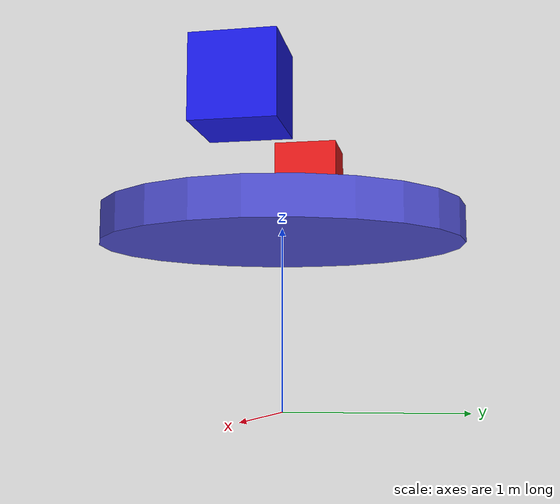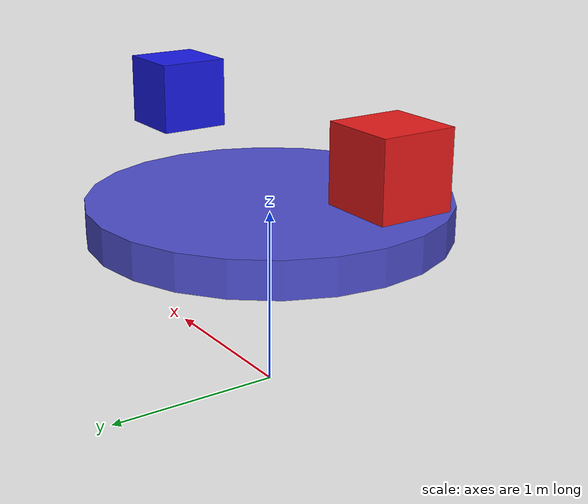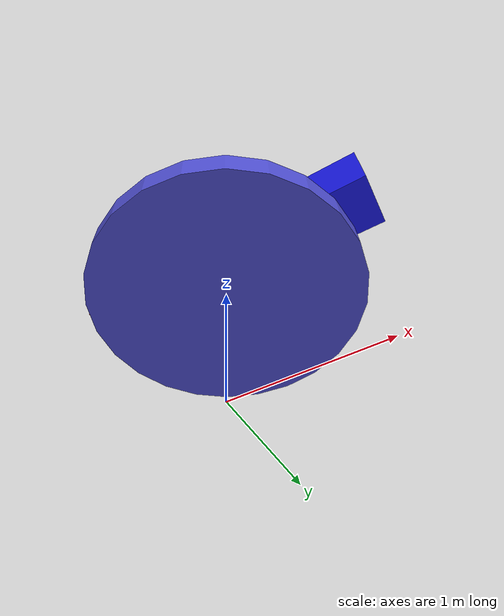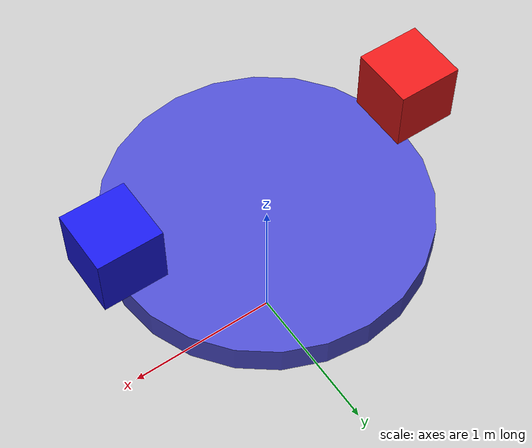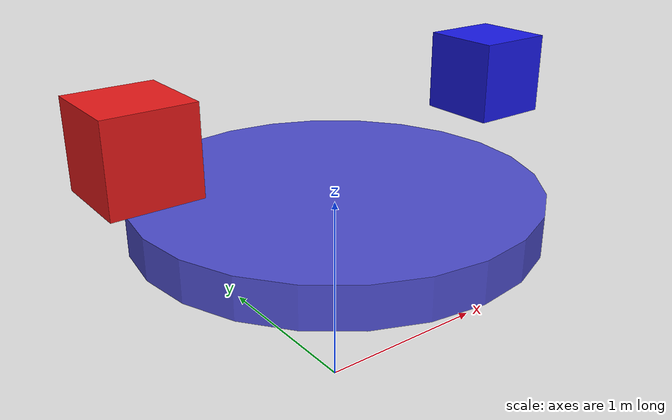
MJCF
<mujoco>
  <option gravity="0 0 -9.81" />
  <worldbody>
    <body name="object_1" pos="0 0 1">
      <geom type="cylinder" size="1 0.1" rgba="0.3 0.3 0.8 1" friction="0.5 0.5 0.5" />
    </body>
    <body name="object_2" pos="-1 0 1.5">
      <geom type="box" size="0.2 0.2 0.2" rgba="0.9 0.1 0.1 1" />
      <joint name="object_2_joint" type="free" />
    </body>
    <body name="object_3" pos="1 0 1.5">
      <geom type="box" size="0.2 0.2 0.2" rgba="0.1 0.1 0.9 1" />
      <joint name="object_3_joint" type="free" />
    </body>
  </worldbody>
<joint name="joint_object_1_object_2" type="revolute" body1="object_1" body2="object_2" /><joint name="joint_object_1_object_3" type="revolute" body1="object_1" body2="object_3" /></mujoco>
